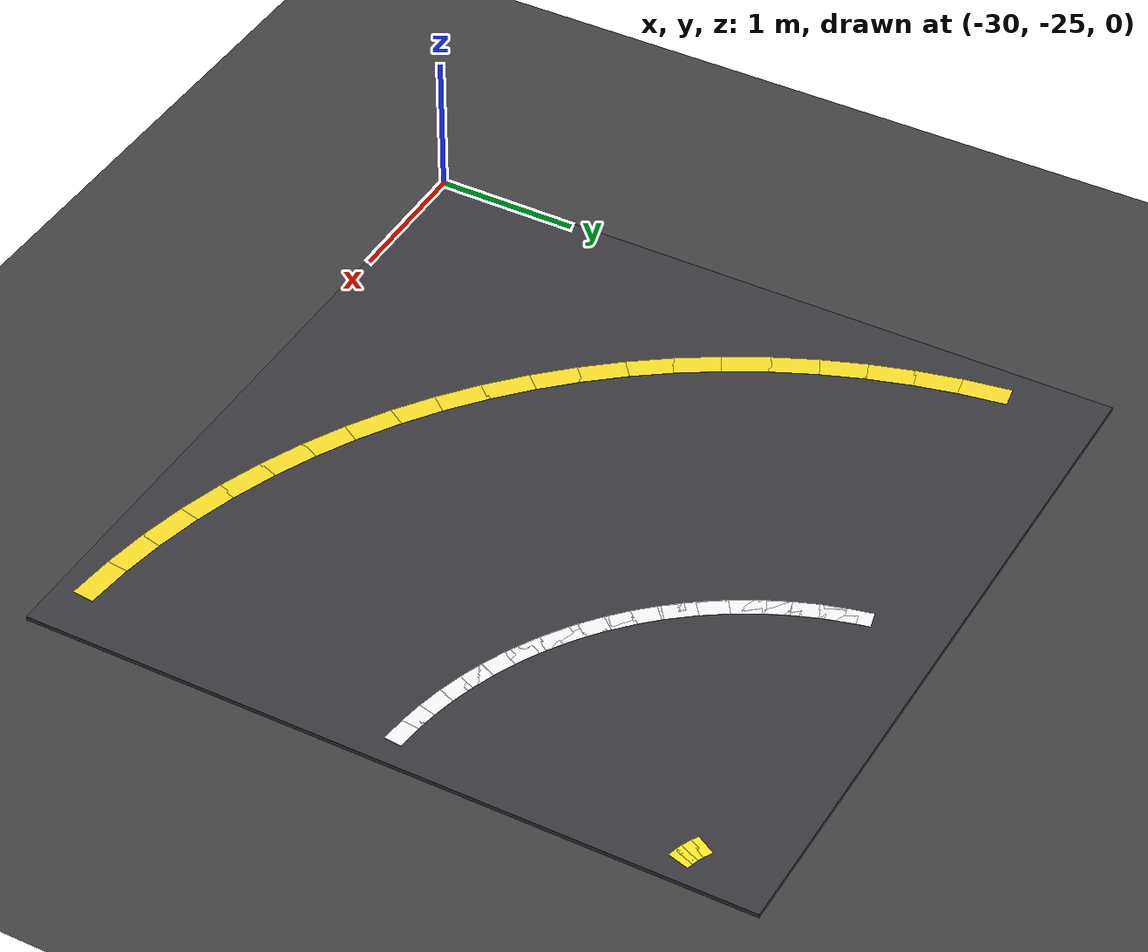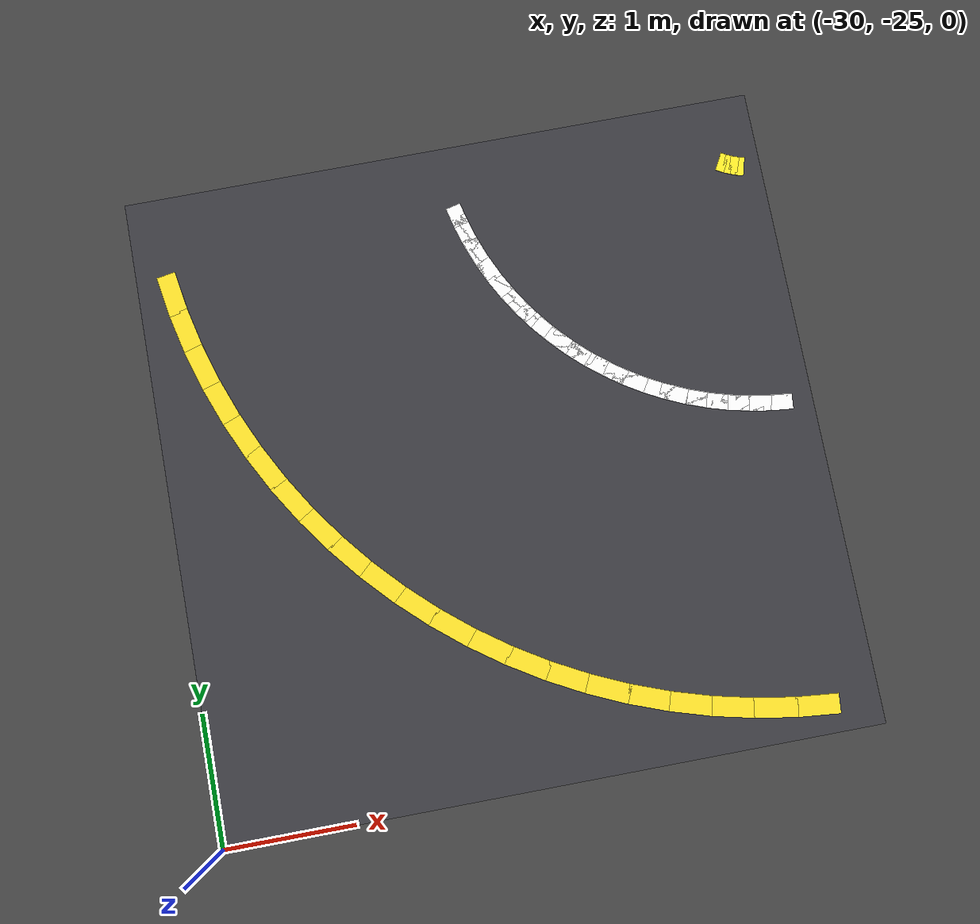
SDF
<sdf version="1.7">
 <world name="compact_city">
  <model name="ground_plane">
   <static>1</static>
   <pose>0 0 0.01 0 -0 0</pose>
   <link name="link">
    <collision name="collision">
     <geometry><plane><normal>0 0 1</normal><size>200 200</size></plane></geometry>
    </collision>
    <visual name="visual">
     <geometry><plane><normal>0 0 1</normal><size>200 200</size></plane></geometry>
     <material>
      <ambient>0.2 0.2 0.2 1</ambient>
      <diffuse>0.25 0.25 0.25 1</diffuse>
      <specular>0.1 0.1 0.1 1</specular>
     </material>
    </visual>
   </link>
  </model>
  <model name="road_tile_68">
   <static>1</static>
   <pose>-27.5 -22.5 0.015 0 -0 0</pose>
   <link name="link">
    <collision name="collision"><geometry><box><size>5 5 0.03</size></box></geometry></collision>
    <visual name="visual">
     <geometry><box><size>5 5 0.03</size></box></geometry>
     <material>
      <ambient>0.18 0.18 0.2 1</ambient>
      <diffuse>0.22 0.22 0.24 1</diffuse>
      <specular>0.1 0.1 0.1 1</specular>
     </material>
    </visual>
   </link>
  </model>
  <model name="ac_501">
   <static>1</static>
   <pose>-27.4347 -20.5677 0.038 0 0 -1.34169</pose>
   <link name="link">
    <visual name="v">
     <geometry><box><size>0.173411 0.12 0.002</size></box></geometry>
     <material><ambient>1 1 1 1</ambient><diffuse>0.95 0.95 0.95 1</diffuse></material>
    </visual>
   </link>
  </model>
  <model name="ac_502">
   <static>1</static>
   <pose>-27.3924 -20.7257 0.038 0 0 -1.27628</pose>
   <link name="link">
    <visual name="v">
     <geometry><box><size>0.173411 0.12 0.002</size></box></geometry>
     <material><ambient>1 1 1 1</ambient><diffuse>0.95 0.95 0.95 1</diffuse></material>
    </visual>
   </link>
  </model>
  <model name="ac_503">
   <static>1</static>
   <pose>-27.3398 -20.8806 0.038 0 0 -1.21079</pose>
   <link name="link">
    <visual name="v">
     <geometry><box><size>0.173411 0.12 0.002</size></box></geometry>
     <material><ambient>1 1 1 1</ambient><diffuse>0.95 0.95 0.95 1</diffuse></material>
    </visual>
   </link>
  </model>
  <model name="ac_504">
   <static>1</static>
   <pose>-27.2772 -21.0318 0.038 0 0 -1.14539</pose>
   <link name="link">
    <visual name="v">
     <geometry><box><size>0.173411 0.12 0.002</size></box></geometry>
     <material><ambient>1 1 1 1</ambient><diffuse>0.95 0.95 0.95 1</diffuse></material>
    </visual>
   </link>
  </model>
  <model name="ac_505">
   <static>1</static>
   <pose>-27.2048 -21.1785 0.038 0 0 -1.07988</pose>
   <link name="link">
    <visual name="v">
     <geometry><box><size>0.173411 0.12 0.002</size></box></geometry>
     <material><ambient>1 1 1 1</ambient><diffuse>0.95 0.95 0.95 1</diffuse></material>
    </visual>
   </link>
  </model>
  <model name="ac_506">
   <static>1</static>
   <pose>-27.123 -21.3202 0.038 0 0 -1.01449</pose>
   <link name="link">
    <visual name="v">
     <geometry><box><size>0.173411 0.12 0.002</size></box></geometry>
     <material><ambient>1 1 1 1</ambient><diffuse>0.95 0.95 0.95 1</diffuse></material>
    </visual>
   </link>
  </model>
  <model name="ac_507">
   <static>1</static>
   <pose>-27.0321 -21.4562 0.038 0 0 -0.948985</pose>
   <link name="link">
    <visual name="v">
     <geometry><box><size>0.173411 0.12 0.002</size></box></geometry>
     <material><ambient>1 1 1 1</ambient><diffuse>0.95 0.95 0.95 1</diffuse></material>
    </visual>
   </link>
  </model>
  <model name="ac_508">
   <static>1</static>
   <pose>-26.9325 -21.586 0.038 0 0 -0.883585</pose>
   <link name="link">
    <visual name="v">
     <geometry><box><size>0.173411 0.12 0.002</size></box></geometry>
     <material><ambient>1 1 1 1</ambient><diffuse>0.95 0.95 0.95 1</diffuse></material>
    </visual>
   </link>
  </model>
  <model name="ac_509">
   <static>1</static>
   <pose>-26.8247 -21.709 0.038 0 0 -0.818085</pose>
   <link name="link">
    <visual name="v">
     <geometry><box><size>0.173411 0.12 0.002</size></box></geometry>
     <material><ambient>1 1 1 1</ambient><diffuse>0.95 0.95 0.95 1</diffuse></material>
    </visual>
   </link>
  </model>
  <model name="ac_510">
   <static>1</static>
   <pose>-26.709 -21.8247 0.038 0 0 -0.752685</pose>
   <link name="link">
    <visual name="v">
     <geometry><box><size>0.173411 0.12 0.002</size></box></geometry>
     <material><ambient>1 1 1 1</ambient><diffuse>0.95 0.95 0.95 1</diffuse></material>
    </visual>
   </link>
  </model>
  <model name="ac_511">
   <static>1</static>
   <pose>-26.586 -21.9325 0.038 0 0 -0.687185</pose>
   <link name="link">
    <visual name="v">
     <geometry><box><size>0.173411 0.12 0.002</size></box></geometry>
     <material><ambient>1 1 1 1</ambient><diffuse>0.95 0.95 0.95 1</diffuse></material>
    </visual>
   </link>
  </model>
  <model name="ac_512">
   <static>1</static>
   <pose>-26.4562 -22.0321 0.038 0 0 -0.621785</pose>
   <link name="link">
    <visual name="v">
     <geometry><box><size>0.173411 0.12 0.002</size></box></geometry>
     <material><ambient>1 1 1 1</ambient><diffuse>0.95 0.95 0.95 1</diffuse></material>
    </visual>
   </link>
  </model>
  <model name="ac_513">
   <static>1</static>
   <pose>-26.3202 -22.123 0.038 0 0 -0.556285</pose>
   <link name="link">
    <visual name="v">
     <geometry><box><size>0.173411 0.12 0.002</size></box></geometry>
     <material><ambient>1 1 1 1</ambient><diffuse>0.95 0.95 0.95 1</diffuse></material>
    </visual>
   </link>
  </model>
  <model name="ac_514">
   <static>1</static>
   <pose>-26.1785 -22.2048 0.038 0 0 -0.490885</pose>
   <link name="link">
    <visual name="v">
     <geometry><box><size>0.173411 0.12 0.002</size></box></geometry>
     <material><ambient>1 1 1 1</ambient><diffuse>0.95 0.95 0.95 1</diffuse></material>
    </visual>
   </link>
  </model>
  <model name="ac_515">
   <static>1</static>
   <pose>-26.0318 -22.2772 0.038 0 0 -0.425385</pose>
   <link name="link">
    <visual name="v">
     <geometry><box><size>0.173411 0.12 0.002</size></box></geometry>
     <material><ambient>1 1 1 1</ambient><diffuse>0.95 0.95 0.95 1</diffuse></material>
    </visual>
   </link>
  </model>
  <model name="ac_516">
   <static>1</static>
   <pose>-25.8806 -22.3398 0.038 0 0 -0.359985</pose>
   <link name="link">
    <visual name="v">
     <geometry><box><size>0.173411 0.12 0.002</size></box></geometry>
     <material><ambient>1 1 1 1</ambient><diffuse>0.95 0.95 0.95 1</diffuse></material>
    </visual>
   </link>
  </model>
  <model name="ac_517">
   <static>1</static>
   <pose>-25.7257 -22.3924 0.038 0 0 -0.294485</pose>
   <link name="link">
    <visual name="v">
     <geometry><box><size>0.173411 0.12 0.002</size></box></geometry>
     <material><ambient>1 1 1 1</ambient><diffuse>0.95 0.95 0.95 1</diffuse></material>
    </visual>
   </link>
  </model>
  <model name="ac_518">
   <static>1</static>
   <pose>-25.5677 -22.4347 0.038 0 0 -0.229085</pose>
   <link name="link">
    <visual name="v">
     <geometry><box><size>0.173411 0.12 0.002</size></box></geometry>
     <material><ambient>1 1 1 1</ambient><diffuse>0.95 0.95 0.95 1</diffuse></material>
    </visual>
   </link>
  </model>
  <model name="ac_519">
   <static>1</static>
   <pose>-25.4072 -22.4666 0.038 0 0 -0.163585</pose>
   <link name="link">
    <visual name="v">
     <geometry><box><size>0.173411 0.12 0.002</size></box></geometry>
     <material><ambient>1 1 1 1</ambient><diffuse>0.95 0.95 0.95 1</diffuse></material>
    </visual>
   </link>
  </model>
  <model name="ac_520">
   <static>1</static>
   <pose>-25.245 -22.488 0.038 0 0 -0.098185</pose>
   <link name="link">
    <visual name="v">
     <geometry><box><size>0.173411 0.12 0.002</size></box></geometry>
     <material><ambient>1 1 1 1</ambient><diffuse>0.95 0.95 0.95 1</diffuse></material>
    </visual>
   </link>
  </model>
  <model name="ao_548">
   <static>1</static>
   <pose>-29.7359 -20.7819 0.038 0 0 -1.40718</pose>
   <link name="link">
    <visual name="v">
     <geometry><box><size>0.329808 0.15 0.002</size></box></geometry>
     <material><ambient>0.9 0.8 0.1 1</ambient><diffuse>0.95 0.85 0.15 1</diffuse></material>
    </visual>
   </link>
  </model>
  <model name="ao_549">
   <static>1</static>
   <pose>-29.6746 -21.09 0.038 0 0 -1.34169</pose>
   <link name="link">
    <visual name="v">
     <geometry><box><size>0.329808 0.15 0.002</size></box></geometry>
     <material><ambient>0.9 0.8 0.1 1</ambient><diffuse>0.95 0.85 0.15 1</diffuse></material>
    </visual>
   </link>
  </model>
  <model name="ao_550">
   <static>1</static>
   <pose>-29.5933 -21.3934 0.038 0 0 -1.27628</pose>
   <link name="link">
    <visual name="v">
     <geometry><box><size>0.329808 0.15 0.002</size></box></geometry>
     <material><ambient>0.9 0.8 0.1 1</ambient><diffuse>0.95 0.85 0.15 1</diffuse></material>
    </visual>
   </link>
  </model>
  <model name="ao_551">
   <static>1</static>
   <pose>-29.4923 -21.6908 0.038 0 0 -1.21079</pose>
   <link name="link">
    <visual name="v">
     <geometry><box><size>0.329808 0.15 0.002</size></box></geometry>
     <material><ambient>0.9 0.8 0.1 1</ambient><diffuse>0.95 0.85 0.15 1</diffuse></material>
    </visual>
   </link>
  </model>
  <model name="ao_552">
   <static>1</static>
   <pose>-29.3721 -21.981 0.038 0 0 -1.14539</pose>
   <link name="link">
    <visual name="v">
     <geometry><box><size>0.329808 0.15 0.002</size></box></geometry>
     <material><ambient>0.9 0.8 0.1 1</ambient><diffuse>0.95 0.85 0.15 1</diffuse></material>
    </visual>
   </link>
  </model>
  <model name="ao_553">
   <static>1</static>
   <pose>-29.2332 -22.2627 0.038 0 0 -1.07988</pose>
   <link name="link">
    <visual name="v">
     <geometry><box><size>0.329808 0.15 0.002</size></box></geometry>
     <material><ambient>0.9 0.8 0.1 1</ambient><diffuse>0.95 0.85 0.15 1</diffuse></material>
    </visual>
   </link>
  </model>
  <model name="ao_554">
   <static>1</static>
   <pose>-29.0762 -22.5347 0.038 0 0 -1.01449</pose>
   <link name="link">
    <visual name="v">
     <geometry><box><size>0.329808 0.15 0.002</size></box></geometry>
     <material><ambient>0.9 0.8 0.1 1</ambient><diffuse>0.95 0.85 0.15 1</diffuse></material>
    </visual>
   </link>
  </model>
  <model name="ao_555">
   <static>1</static>
   <pose>-28.9017 -22.7959 0.038 0 0 -0.948985</pose>
   <link name="link">
    <visual name="v">
     <geometry><box><size>0.329808 0.15 0.002</size></box></geometry>
     <material><ambient>0.9 0.8 0.1 1</ambient><diffuse>0.95 0.85 0.15 1</diffuse></material>
    </visual>
   </link>
  </model>
  <model name="ao_556">
   <static>1</static>
   <pose>-28.7105 -23.0451 0.038 0 0 -0.883585</pose>
   <link name="link">
    <visual name="v">
     <geometry><box><size>0.329808 0.15 0.002</size></box></geometry>
     <material><ambient>0.9 0.8 0.1 1</ambient><diffuse>0.95 0.85 0.15 1</diffuse></material>
    </visual>
   </link>
  </model>
  <model name="ao_557">
   <static>1</static>
   <pose>-28.5033 -23.2812 0.038 0 0 -0.818085</pose>
   <link name="link">
    <visual name="v">
     <geometry><box><size>0.329808 0.15 0.002</size></box></geometry>
     <material><ambient>0.9 0.8 0.1 1</ambient><diffuse>0.95 0.85 0.15 1</diffuse></material>
    </visual>
   </link>
  </model>
  <model name="ao_558">
   <static>1</static>
   <pose>-28.2812 -23.5033 0.038 0 0 -0.752685</pose>
   <link name="link">
    <visual name="v">
     <geometry><box><size>0.329808 0.15 0.002</size></box></geometry>
     <material><ambient>0.9 0.8 0.1 1</ambient><diffuse>0.95 0.85 0.15 1</diffuse></material>
    </visual>
   </link>
  </model>
  <model name="ao_559">
   <static>1</static>
   <pose>-28.0451 -23.7105 0.038 0 0 -0.687185</pose>
   <link name="link">
    <visual name="v">
     <geometry><box><size>0.329808 0.15 0.002</size></box></geometry>
     <material><ambient>0.9 0.8 0.1 1</ambient><diffuse>0.95 0.85 0.15 1</diffuse></material>
    </visual>
   </link>
  </model>
  <model name="ao_560">
   <static>1</static>
   <pose>-27.7959 -23.9017 0.038 0 0 -0.621785</pose>
   <link name="link">
    <visual name="v">
     <geometry><box><size>0.329808 0.15 0.002</size></box></geometry>
     <material><ambient>0.9 0.8 0.1 1</ambient><diffuse>0.95 0.85 0.15 1</diffuse></material>
    </visual>
   </link>
  </model>
  <model name="ao_561">
   <static>1</static>
   <pose>-27.5347 -24.0762 0.038 0 0 -0.556285</pose>
   <link name="link">
    <visual name="v">
     <geometry><box><size>0.329808 0.15 0.002</size></box></geometry>
     <material><ambient>0.9 0.8 0.1 1</ambient><diffuse>0.95 0.85 0.15 1</diffuse></material>
    </visual>
   </link>
  </model>
  <model name="ao_562">
   <static>1</static>
   <pose>-27.2627 -24.2332 0.038 0 0 -0.490885</pose>
   <link name="link">
    <visual name="v">
     <geometry><box><size>0.329808 0.15 0.002</size></box></geometry>
     <material><ambient>0.9 0.8 0.1 1</ambient><diffuse>0.95 0.85 0.15 1</diffuse></material>
    </visual>
   </link>
  </model>
  <model name="ao_563">
   <static>1</static>
   <pose>-26.981 -24.3721 0.038 0 0 -0.425385</pose>
   <link name="link">
    <visual name="v">
     <geometry><box><size>0.329808 0.15 0.002</size></box></geometry>
     <material><ambient>0.9 0.8 0.1 1</ambient><diffuse>0.95 0.85 0.15 1</diffuse></material>
    </visual>
   </link>
  </model>
  <model name="ao_564">
   <static>1</static>
   <pose>-26.6908 -24.4923 0.038 0 0 -0.359985</pose>
   <link name="link">
    <visual name="v">
     <geometry><box><size>0.329808 0.15 0.002</size></box></geometry>
     <material><ambient>0.9 0.8 0.1 1</ambient><diffuse>0.95 0.85 0.15 1</diffuse></material>
    </visual>
   </link>
  </model>
  <model name="ao_565">
   <static>1</static>
   <pose>-26.3934 -24.5933 0.038 0 0 -0.294485</pose>
   <link name="link">
    <visual name="v">
     <geometry><box><size>0.329808 0.15 0.002</size></box></geometry>
     <material><ambient>0.9 0.8 0.1 1</ambient><diffuse>0.95 0.85 0.15 1</diffuse></material>
    </visual>
   </link>
  </model>
  <model name="ao_566">
   <static>1</static>
   <pose>-26.09 -24.6746 0.038 0 0 -0.229085</pose>
   <link name="link">
    <visual name="v">
     <geometry><box><size>0.329808 0.15 0.002</size></box></geometry>
     <material><ambient>0.9 0.8 0.1 1</ambient><diffuse>0.95 0.85 0.15 1</diffuse></material>
    </visual>
   </link>
  </model>
  <model name="ao_567">
   <static>1</static>
   <pose>-25.7819 -24.7359 0.038 0 0 -0.163585</pose>
   <link name="link">
    <visual name="v">
     <geometry><box><size>0.329808 0.15 0.002</size></box></geometry>
     <material><ambient>0.9 0.8 0.1 1</ambient><diffuse>0.95 0.85 0.15 1</diffuse></material>
    </visual>
   </link>
  </model>
  <model name="ao_568">
   <static>1</static>
   <pose>-25.4705 -24.7769 0.038 0 0 -0.098185</pose>
   <link name="link">
    <visual name="v">
     <geometry><box><size>0.329808 0.15 0.002</size></box></geometry>
     <material><ambient>0.9 0.8 0.1 1</ambient><diffuse>0.95 0.85 0.15 1</diffuse></material>
    </visual>
   </link>
  </model>
  <model name="arc_c_328">
   <static>1</static>
   <pose>-27.4043 -20.6781 0.038 0 0 -1.2959</pose>
   <link name="link">
    <visual name="visual">
     <geometry><box><size>0.216299 0.12 0.002</size></box></geometry>
     <material><ambient>1 1 1 1</ambient><diffuse>0.95 0.95 0.95 1</diffuse></material>
    </visual>
   </link>
  </model>
  <model name="arc_c_329">
   <static>1</static>
   <pose>-27.3437 -20.8646 0.038 0 0 -1.2174</pose>
   <link name="link">
    <visual name="visual">
     <geometry><box><size>0.216299 0.12 0.002</size></box></geometry>
     <material><ambient>1 1 1 1</ambient><diffuse>0.95 0.95 0.95 1</diffuse></material>
    </visual>
   </link>
  </model>
  <model name="arc_c_330">
   <static>1</static>
   <pose>-27.2686 -21.0458 0.038 0 0 -1.1388</pose>
   <link name="link">
    <visual name="visual">
     <geometry><box><size>0.216299 0.12 0.002</size></box></geometry>
     <material><ambient>1 1 1 1</ambient><diffuse>0.95 0.95 0.95 1</diffuse></material>
    </visual>
   </link>
  </model>
  <model name="arc_c_331">
   <static>1</static>
   <pose>-27.1796 -21.2206 0.038 0 0 -1.0603</pose>
   <link name="link">
    <visual name="visual">
     <geometry><box><size>0.216299 0.12 0.002</size></box></geometry>
     <material><ambient>1 1 1 1</ambient><diffuse>0.95 0.95 0.95 1</diffuse></material>
    </visual>
   </link>
  </model>
  <model name="arc_c_332">
   <static>1</static>
   <pose>-27.0771 -21.3879 0.038 0 0 -0.9817</pose>
   <link name="link">
    <visual name="visual">
     <geometry><box><size>0.216299 0.12 0.002</size></box></geometry>
     <material><ambient>1 1 1 1</ambient><diffuse>0.95 0.95 0.95 1</diffuse></material>
    </visual>
   </link>
  </model>
  <model name="arc_c_333">
   <static>1</static>
   <pose>-26.9618 -21.5465 0.038 0 0 -0.9032</pose>
   <link name="link">
    <visual name="visual">
     <geometry><box><size>0.216299 0.12 0.002</size></box></geometry>
     <material><ambient>1 1 1 1</ambient><diffuse>0.95 0.95 0.95 1</diffuse></material>
    </visual>
   </link>
  </model>
  <model name="arc_c_334">
   <static>1</static>
   <pose>-26.8344 -21.6957 0.038 0 0 -0.8247</pose>
   <link name="link">
    <visual name="visual">
     <geometry><box><size>0.216299 0.12 0.002</size></box></geometry>
     <material><ambient>1 1 1 1</ambient><diffuse>0.95 0.95 0.95 1</diffuse></material>
    </visual>
   </link>
  </model>
  <model name="arc_c_335">
   <static>1</static>
   <pose>-26.6957 -21.8344 0.038 0 0 -0.7461</pose>
   <link name="link">
    <visual name="visual">
     <geometry><box><size>0.216299 0.12 0.002</size></box></geometry>
     <material><ambient>1 1 1 1</ambient><diffuse>0.95 0.95 0.95 1</diffuse></material>
    </visual>
   </link>
  </model>
  <model name="arc_c_336">
   <static>1</static>
   <pose>-26.5465 -21.9618 0.038 0 0 -0.6676</pose>
   <link name="link">
    <visual name="visual">
     <geometry><box><size>0.216299 0.12 0.002</size></box></geometry>
     <material><ambient>1 1 1 1</ambient><diffuse>0.95 0.95 0.95 1</diffuse></material>
    </visual>
   </link>
  </model>
  <model name="arc_c_337">
   <static>1</static>
   <pose>-26.3879 -22.0771 0.038 0 0 -0.589</pose>
   <link name="link">
    <visual name="visual">
     <geometry><box><size>0.216299 0.12 0.002</size></box></geometry>
     <material><ambient>1 1 1 1</ambient><diffuse>0.95 0.95 0.95 1</diffuse></material>
    </visual>
   </link>
  </model>
  <model name="arc_c_338">
   <static>1</static>
   <pose>-26.2206 -22.1796 0.038 0 0 -0.5105</pose>
   <link name="link">
    <visual name="visual">
     <geometry><box><size>0.216299 0.12 0.002</size></box></geometry>
     <material><ambient>1 1 1 1</ambient><diffuse>0.95 0.95 0.95 1</diffuse></material>
    </visual>
   </link>
  </model>
  <model name="arc_c_339">
   <static>1</static>
   <pose>-26.0458 -22.2686 0.038 0 0 -0.432</pose>
   <link name="link">
    <visual name="visual">
     <geometry><box><size>0.216299 0.12 0.002</size></box></geometry>
     <material><ambient>1 1 1 1</ambient><diffuse>0.95 0.95 0.95 1</diffuse></material>
    </visual>
   </link>
  </model>
  <model name="arc_c_340">
   <static>1</static>
   <pose>-25.8646 -22.3437 0.038 0 0 -0.3534</pose>
   <link name="link">
    <visual name="visual">
     <geometry><box><size>0.216299 0.12 0.002</size></box></geometry>
     <material><ambient>1 1 1 1</ambient><diffuse>0.95 0.95 0.95 1</diffuse></material>
    </visual>
   </link>
  </model>
  <model name="arc_c_341">
   <static>1</static>
   <pose>-25.6781 -22.4043 0.038 0 0 -0.2749</pose>
   <link name="link">
    <visual name="visual">
     <geometry><box><size>0.216299 0.12 0.002</size></box></geometry>
     <material><ambient>1 1 1 1</ambient><diffuse>0.95 0.95 0.95 1</diffuse></material>
    </visual>
   </link>
  </model>
  <model name="arc_c_342">
   <static>1</static>
   <pose>-25.4873 -22.4501 0.038 0 0 -0.1963</pose>
   <link name="link">
    <visual name="visual">
     <geometry><box><size>0.216299 0.12 0.002</size></box></geometry>
     <material><ambient>1 1 1 1</ambient><diffuse>0.95 0.95 0.95 1</diffuse></material>
    </visual>
   </link>
  </model>
  <model name="arc_c_343">
   <static>1</static>
   <pose>-25.2936 -22.4808 0.038 0 0 -0.1178</pose>
   <link name="link">
    <visual name="visual">
     <geometry><box><size>0.216299 0.12 0.002</size></box></geometry>
     <material><ambient>1 1 1 1</ambient><diffuse>0.95 0.95 0.95 1</diffuse></material>
    </visual>
   </link>
  </model>
  <model name="arc_in_358">
   <static>1</static>
   <pose>-25.2929 -20.5231 0.038 0 0 -0.5105</pose>
   <link name="link">
    <visual name="visual">
     <geometry><box><size>0.067112 0.15 0.002</size></box></geometry>
     <material><ambient>0.95 0.85 0.1 1</ambient><diffuse>1 0.9 0.15 1</diffuse></material>
    </visual>
   </link>
  </model>
  <model name="arc_in_359">
   <static>1</static>
   <pose>-25.251 -20.5445 0.038 0 0 -0.432</pose>
   <link name="link">
    <visual name="visual">
     <geometry><box><size>0.067112 0.15 0.002</size></box></geometry>
     <material><ambient>0.95 0.85 0.1 1</ambient><diffuse>1 0.9 0.15 1</diffuse></material>
    </visual>
   </link>
  </model>
  <model name="arc_in_360">
   <static>1</static>
   <pose>-25.2075 -20.5625 0.038 0 0 -0.3534</pose>
   <link name="link">
    <visual name="visual">
     <geometry><box><size>0.067112 0.15 0.002</size></box></geometry>
     <material><ambient>0.95 0.85 0.1 1</ambient><diffuse>1 0.9 0.15 1</diffuse></material>
    </visual>
   </link>
  </model>
  <model name="arc_in_361">
   <static>1</static>
   <pose>-25.1627 -20.577 0.038 0 0 -0.2749</pose>
   <link name="link">
    <visual name="visual">
     <geometry><box><size>0.067112 0.15 0.002</size></box></geometry>
     <material><ambient>0.95 0.85 0.1 1</ambient><diffuse>1 0.9 0.15 1</diffuse></material>
    </visual>
   </link>
  </model>
 </world>
</sdf>
